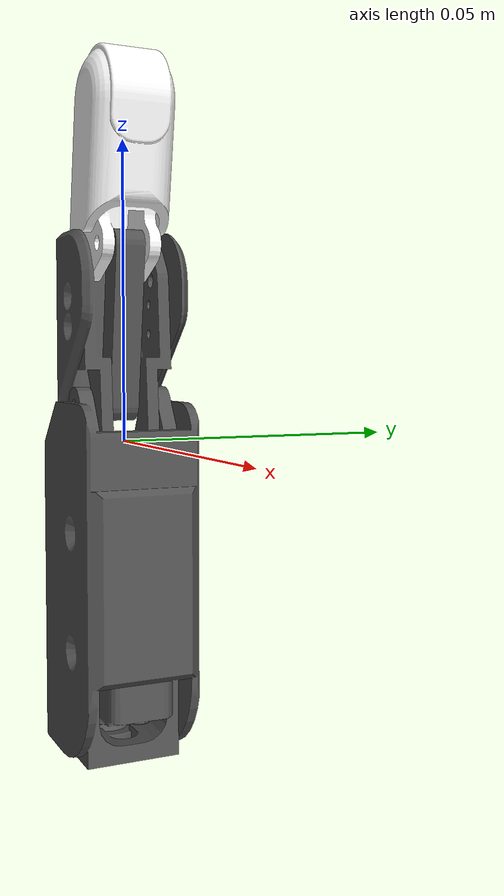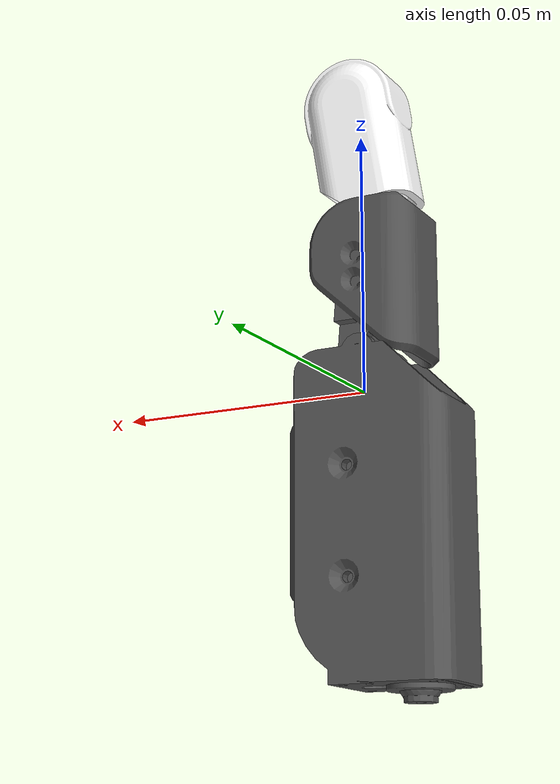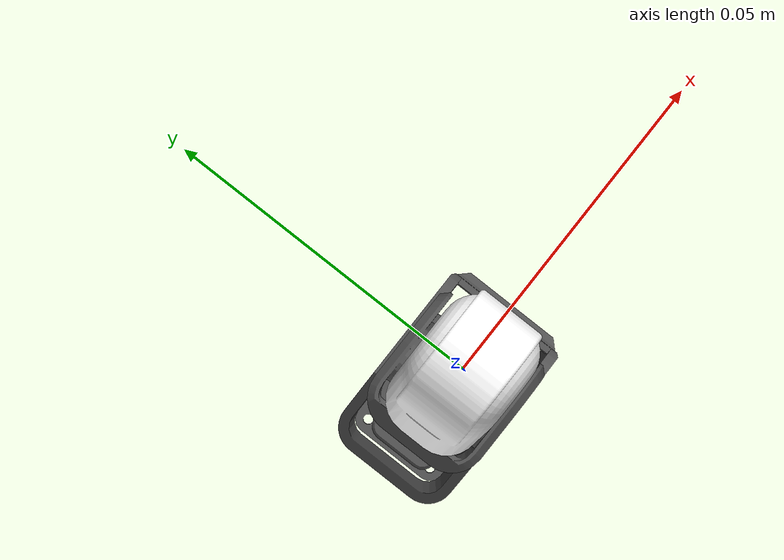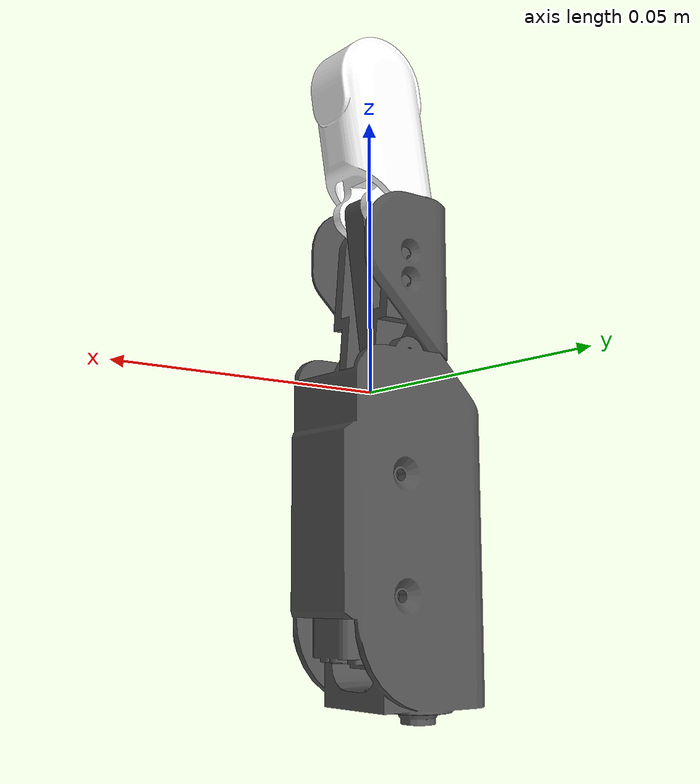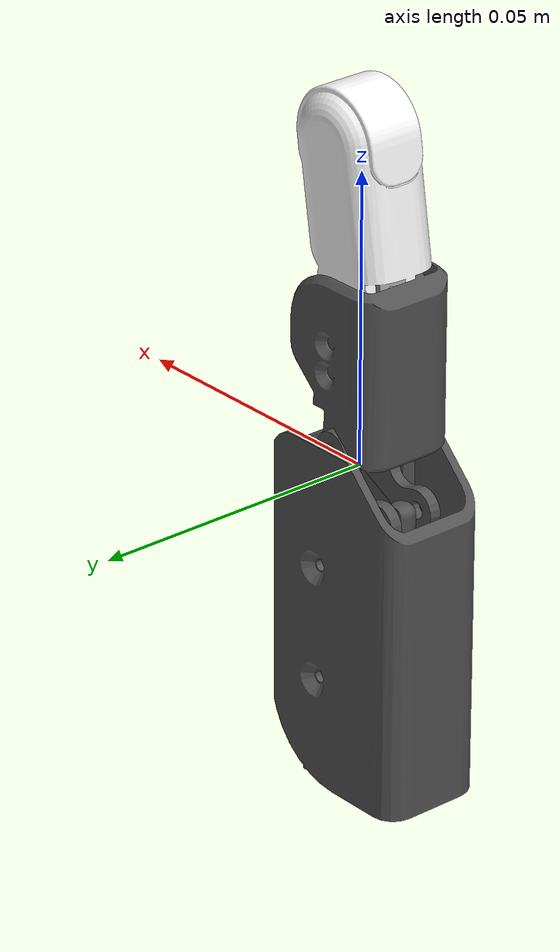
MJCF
<?xml version='1.0' encoding='utf-8'?>
<mujoco model="ROUGH_R_finger_thumb_module">
  <compiler angle="radian" />
  <default>
    <geom contype="0" conaffinity="2" friction="0.8 0.01 0.002" material="robot_mat" />
    <joint armature="0.0001" damping="0.01" />
  </default>
  <asset>
    <material name="robot_mat" rgba="0.32 0.32 0.32 1" specular="0.10" shininess="0.15"/>
    <mesh name="mesh_1" file="ROUGH_R_finger_thumb/meshes/Base_Link.STL" />
    <mesh name="mesh_2" file="ROUGH_R_finger_thumb/meshes/Motor_Link.STL" />
    <mesh name="mesh_3" file="ROUGH_R_finger_thumb/meshes/Motor_Linear_Link.STL" />
    <mesh name="mesh_4" file="ROUGH_R_finger_thumb/meshes/Link_1.STL" />
    <mesh name="mesh_5" file="ROUGH_R_finger_thumb/meshes/Link_3.STL" />
    <mesh name="mesh_6" file="ROUGH_R_finger_thumb/meshes/Link_2.STL" />
  </asset>
  <worldbody>
    <body name="Base_Link" pos="0 0 0" quat="1 0 0 0">
      <inertial mass="0.0141894" pos="-0.003138 -0 -0.027121" fullinertia="5.15833e-06 5.30449e-06 1.55324e-06 -5.08996e-12 -3.81119e-07 -5.70135e-12" />
      <geom type="mesh" mesh="mesh_1" pos="0 0 0" quat="1 0 0 0" group="3" />
      <geom type="mesh" mesh="mesh_1" pos="0 0 0" quat="1 0 0 0" contype="2" conaffinity="2" group="1" rgba="0.32 0.32 0.32 1" />
      <body name="Link_1" pos="-0.01 0 -0.005" quat="1 0 0 0">
        <inertial mass="0.0052678" pos="0.005831 -0 0.020596" fullinertia="6.6128e-07 6.6582e-07 2.016e-07 -8.9128e-13 -4.3735e-08 -1.8376e-14" />
        <geom type="mesh" mesh="mesh_4" pos="0 0 0" quat="1 0 0 0" group="3" />
        <geom type="mesh" mesh="mesh_4" pos="0 0 0" quat="1 0 0 0" contype="2" conaffinity="2" group="1" rgba="0.32 0.32 0.32 1" />
        <joint name="Joint_2" type="hinge" pos="0.01 0 0.005" axis="0 1 0" range="0 1" limited="true" solimplimit="0.999 0.9999 0.00001 0.5 2"/>
        <body name="Link_3" pos="0.005882 0 0.035046" quat="1 0 0 0">
          <inertial mass="0.00620534" pos="0.003132 2e-06 0.014591" fullinertia="2.51758e-07 2.81987e-07 2.12794e-07 -3.82785e-11 -1.24356e-08 1.66929e-11" />
          <geom type="mesh" mesh="mesh_5" pos="0 0 0" quat="1 0 0 0" group="3" />
          <geom type="mesh" mesh="mesh_5" pos="0 0 0" quat="1 0 0 0" contype="2" conaffinity="2" friction="1.2 0.12 0.03" margin="0.0015" group="1" rgba="1 1 1 1" />
          <geom name="Link_3_tip_pad" type="capsule" fromto="0 0 0.006 0 0 0.029"
                size="0.008" contype="2" conaffinity="2" condim="6" margin="0.0015"
                friction="1.2 0.12 0.03" solref="0.0025 1.2" solimp="0.985 0.998 0.0005 0.5 2"
                group="3" rgba="1 1 1 0"/>
          <joint name="Joint_4" type="hinge" pos="0 0 0" axis="0 1 0" range="0 1" limited="true" solimplimit="0.999 0.9999 0.00001 0.5 2"/>
          <site name="Joint_5_s1" pos="0.005405 0 0.002606" size="0.0008" />
        </body>
        <site name="Joint_1_s2" pos="0 0 0" size="0.0008" />
      </body>
      <body name="Link_2" pos="0.001287 0 0.032652" quat="1 0 0 0">
        <inertial mass="0.0019581" pos="-0.001799 -0 -0.013403" fullinertia="1.4511e-07 1.4766e-07 1.071e-08 2.0214e-23 -1.8366e-08 1.5995e-22" />
        <geom type="mesh" mesh="mesh_6" pos="0 0 0" quat="1 0 0 0" group="3" />
        <geom type="mesh" mesh="mesh_6" pos="0 0 0" quat="1 0 0 0" contype="2" conaffinity="2" group="1" rgba="0.32 0.32 0.32 1" />
        <joint name="Joint_3" type="hinge" pos="-0.003598 0 -0.026806" axis="0 -1 0" />
        <site name="Joint_5_s2" pos="0 0 0" size="0.0008" />
      </body>
      <body name="Motor_Link" pos="-0.01005 0 -0.053" quat="1 0 0 0">
        <inertial mass="0.024669" pos="0.006672 -0 0.021946" fullinertia="3.08482e-06 4.0882e-06 1.45834e-06 -7.57836e-12 -2.8661e-07 -6.59767e-13" />
        <geom type="mesh" mesh="mesh_2" pos="0 0 0" quat="1 0 0 0" group="3" />
        <geom type="mesh" mesh="mesh_2" pos="0 0 0" quat="1 0 0 0" contype="2" conaffinity="2" group="1" rgba="0.32 0.32 0.32 1" />
        <joint name="Motor_Joint" type="hinge" pos="0 0 0" axis="0 -1 0" />
        <body name="Motor_Linear_Link" pos="0.01005 0 0.053" quat="1 0 0 0">
          <inertial mass="0.00097143" pos="-0.01 0 -0.015529" fullinertia="1.4869e-08 1.5022e-08 2.9829e-09 -3.1154e-16 1.5714e-15 -5.5363e-15" />
          <geom type="mesh" mesh="mesh_3" pos="0 0 0" quat="1 0 0 0" group="3" />
          <geom type="mesh" mesh="mesh_3" pos="0 0 0" quat="1 0 0 0" contype="2" conaffinity="2" group="1" rgba="0.32 0.32 0.32 1" />
          <joint name="Motor_Linear_Joint" type="slide" pos="0 0 0" axis="0 0 1" range="0 0.01" limited="true" margin="0.00" solimplimit="0.999 0.9999 0.00001 0.5 2"/>
          <site name="Joint_1_s1" pos="-0.01 0 -0.005" size="0.0008" />
        </body>
      </body>
    </body>
  </worldbody>
  <equality>
    <connect name="Joint_1_loop" site1="Joint_1_s1" site2="Joint_1_s2" solimp="0.999 0.9999 0.00001 0.5 2"/>
    <connect name="Joint_5_loop" site1="Joint_5_s1" site2="Joint_5_s2" solimp="0.999 0.9999 0.00001 0.5 2"/>
  </equality>
  <contact>
    <exclude body1="Base_Link" body2="Link_1" />
    <exclude body1="Base_Link" body2="Link_2" />
    <exclude body1="Base_Link" body2="Link_3" />
    <exclude body1="Base_Link" body2="Motor_Link" />
    <exclude body1="Base_Link" body2="Motor_Linear_Link" />
    <exclude body1="Link_1" body2="Link_2" />
    <exclude body1="Link_1" body2="Link_3" />
    <exclude body1="Link_1" body2="Motor_Link" />
    <exclude body1="Link_1" body2="Motor_Linear_Link" />
    <exclude body1="Link_2" body2="Link_3" />
    <exclude body1="Link_2" body2="Motor_Link" />
    <exclude body1="Link_2" body2="Motor_Linear_Link" />
    <exclude body1="Link_3" body2="Motor_Link" />
    <exclude body1="Link_3" body2="Motor_Linear_Link" />
    <exclude body1="Motor_Link" body2="Motor_Linear_Link" />
  </contact>
</mujoco>
